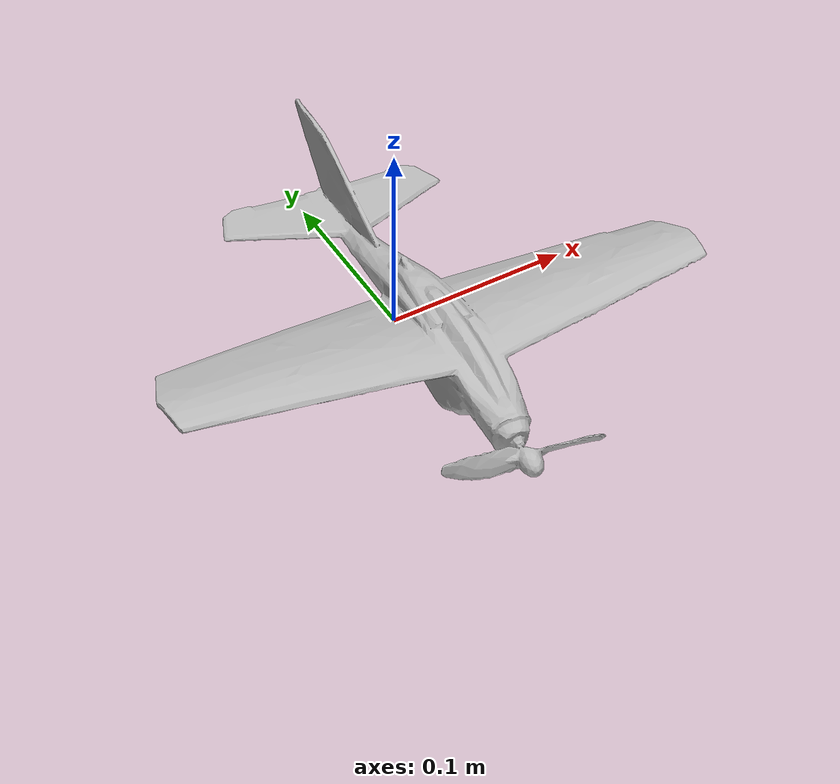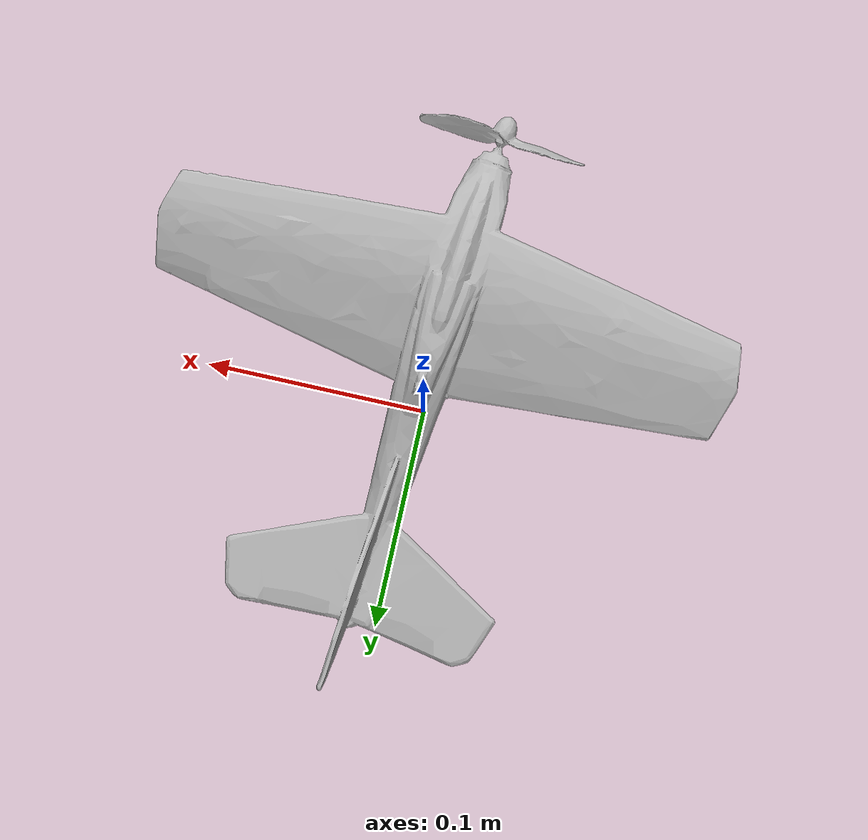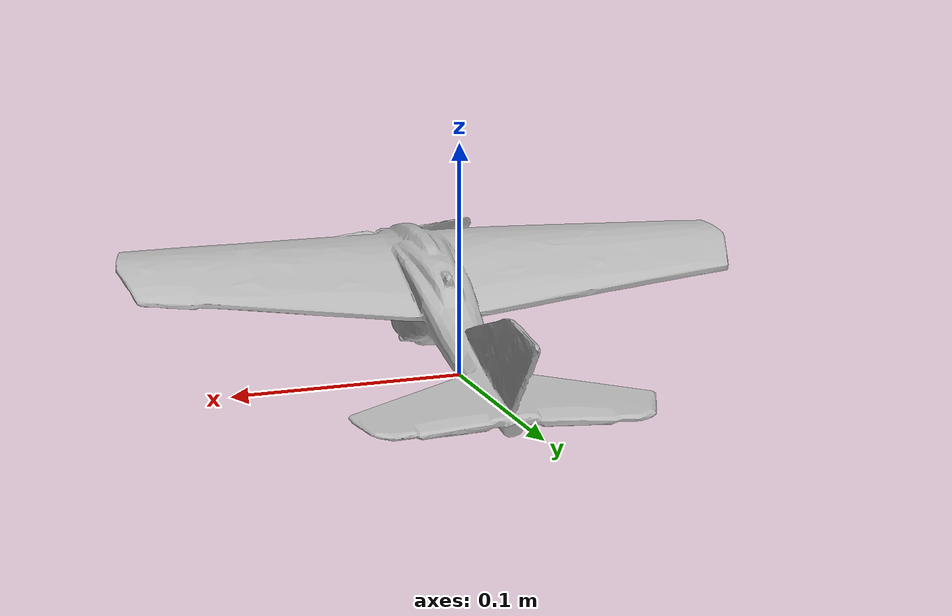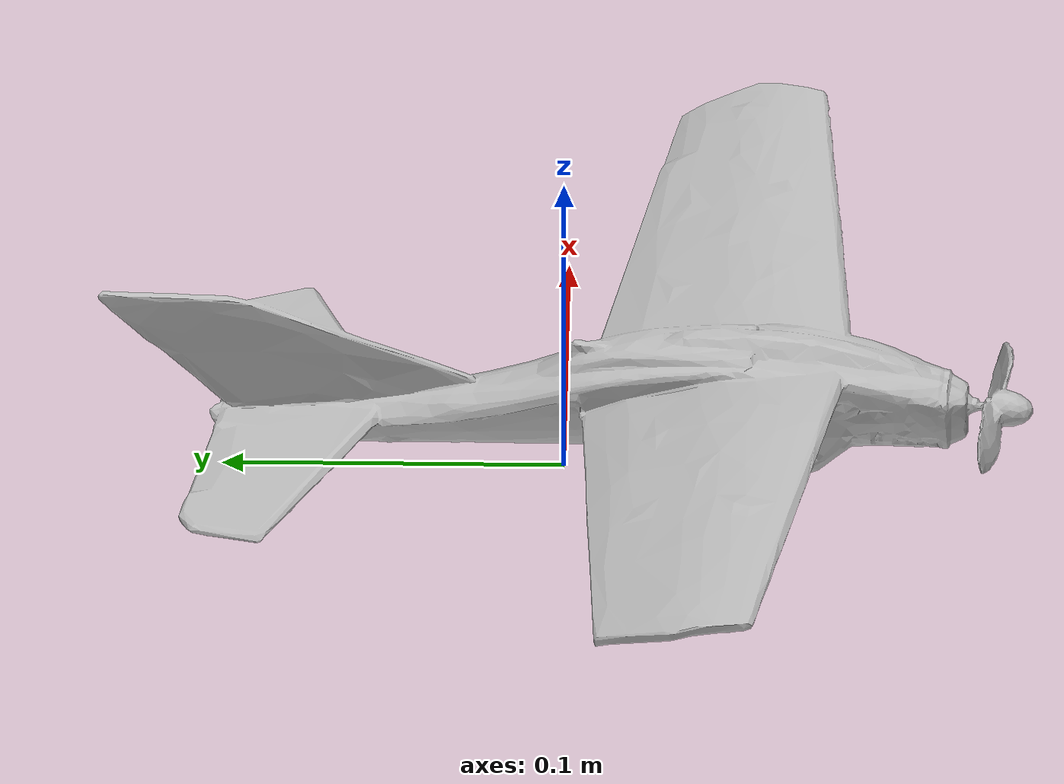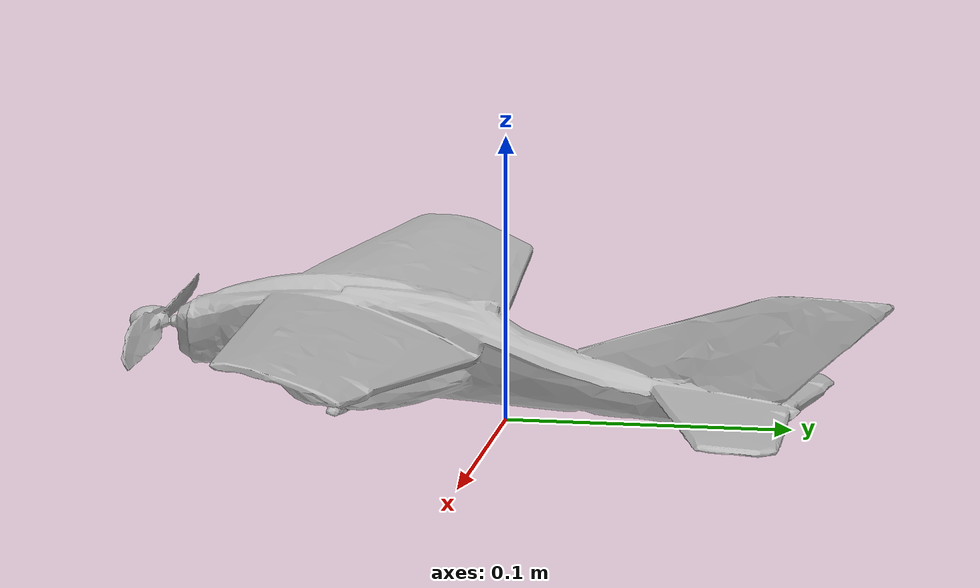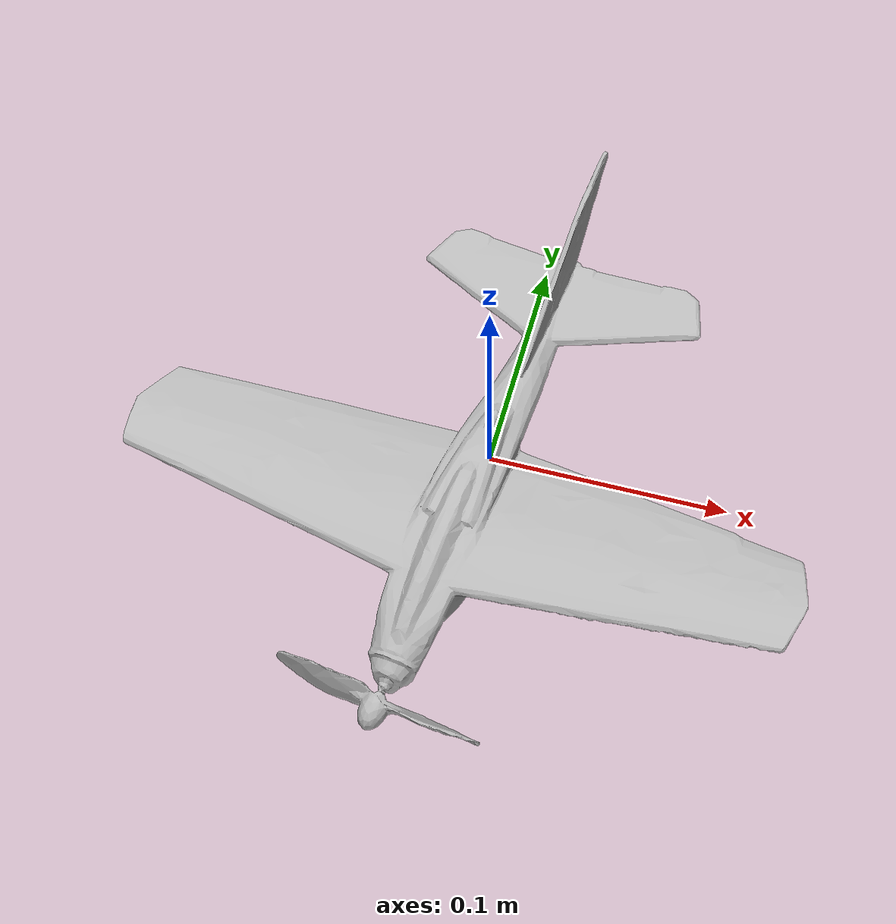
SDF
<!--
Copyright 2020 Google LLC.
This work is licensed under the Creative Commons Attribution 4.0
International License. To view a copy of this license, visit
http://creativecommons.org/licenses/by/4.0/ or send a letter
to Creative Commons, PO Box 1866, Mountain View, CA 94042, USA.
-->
<?xml version="1.0" ?>
<sdf version="1.6">
  <model name="Air_Hogs_Wind_Flyers_Set_Airplane_Red">
    <link name="link_0">
      <visual name="visual">
        <geometry>
          <mesh>
            <uri>meshes/model.obj</uri>
          </mesh>
        </geometry>
      </visual>
      <collision name="collision_0">
        <geometry>
          <mesh>
            <uri>meshes/model.obj</uri>
          </mesh>
        </geometry>
      </collision>
    </link>
  </model>
</sdf>
